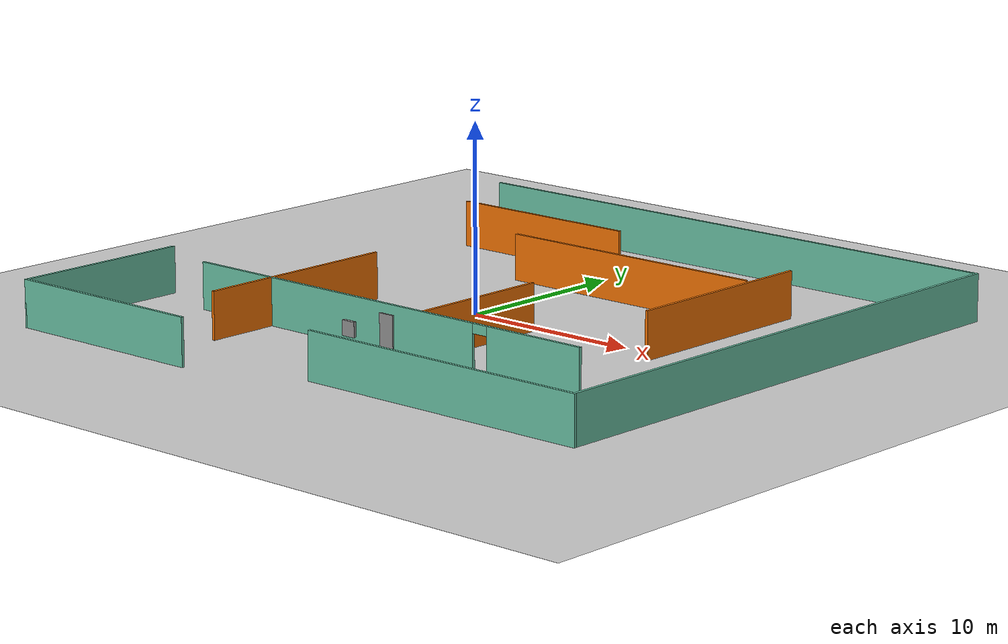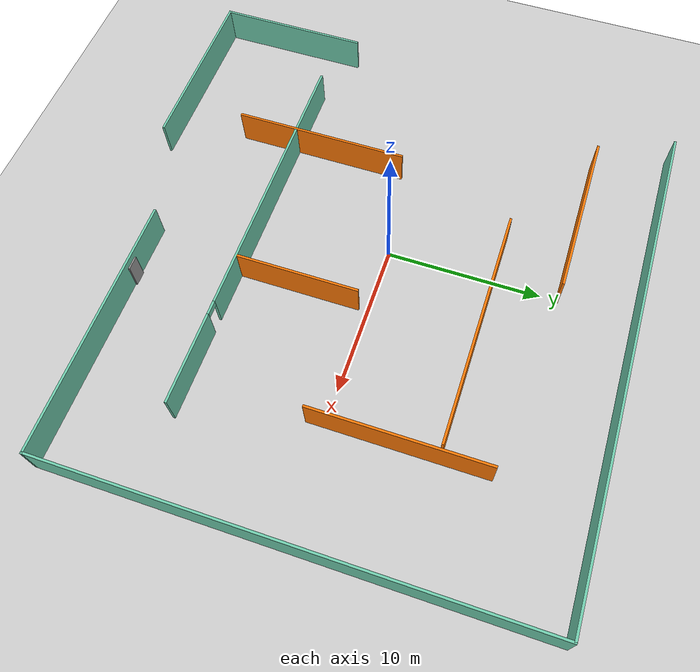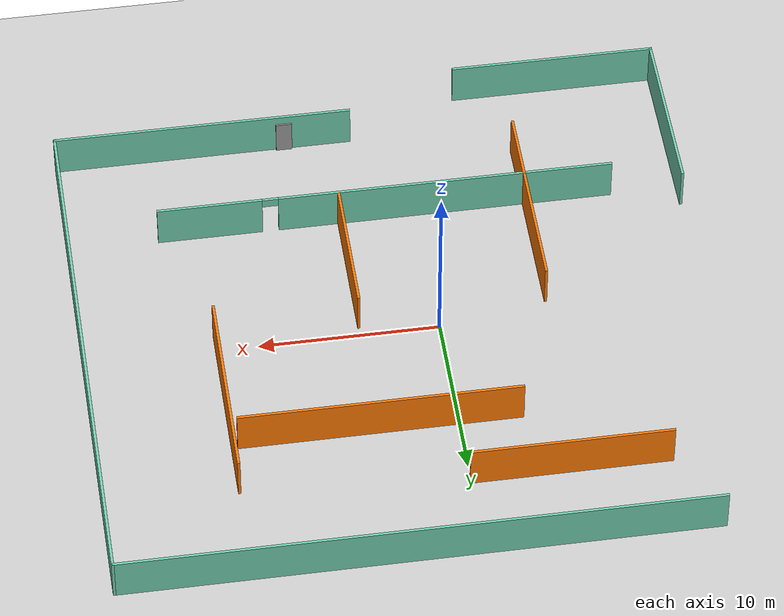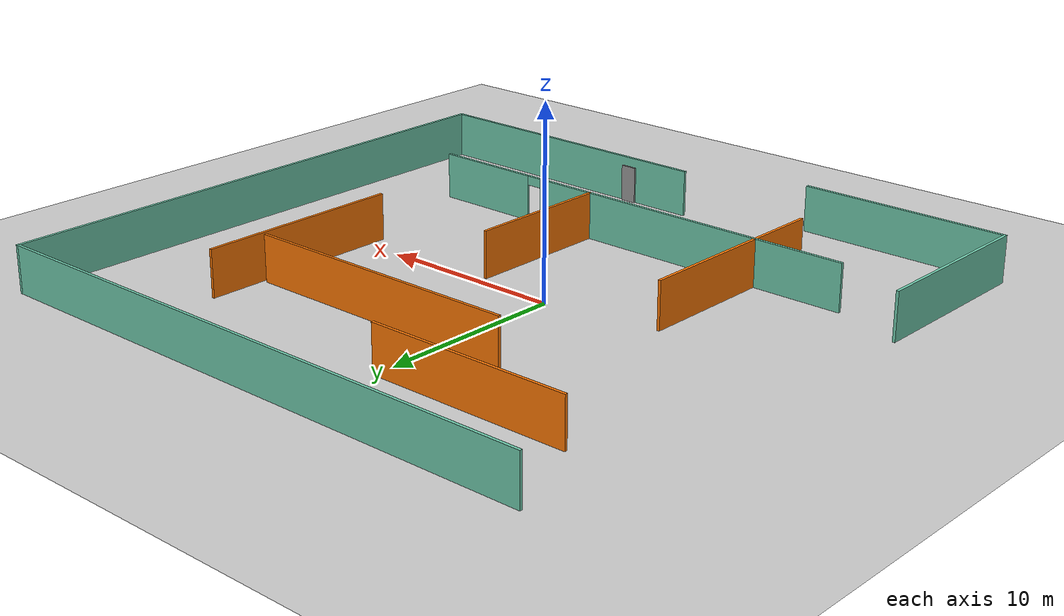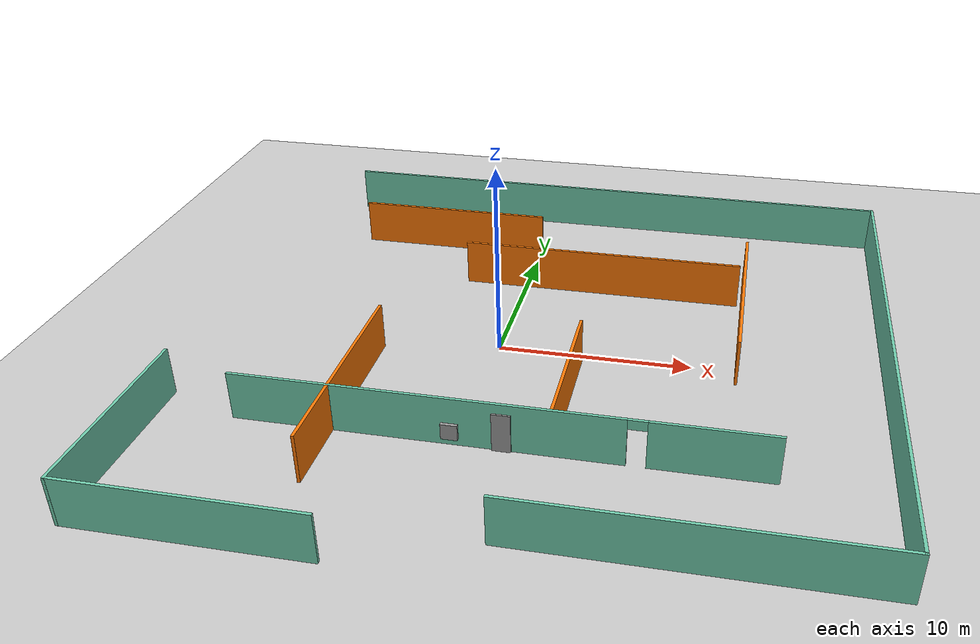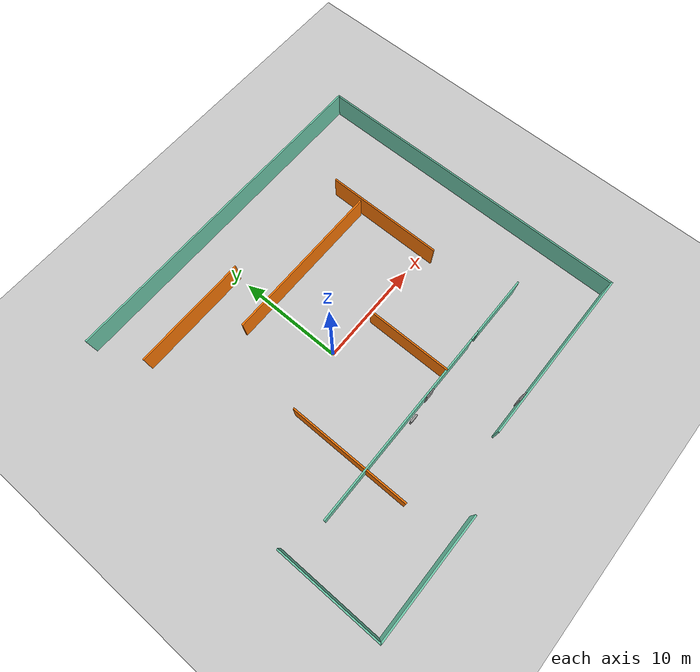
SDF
<sdf version="1.7">
 <world name="default">
  <model name="ground_plane">
   <static>1</static>
   <link name="link">
    <collision name="collision">
     <geometry><plane><normal>0 0 1</normal><size>100 100</size></plane></geometry>
     <surface><friction><ode><mu>100</mu><mu2>50</mu2></ode></friction></surface>
    </collision>
    <visual name="visual">
     <cast_shadows>0</cast_shadows>
     <geometry><plane><normal>0 0 1</normal><size>100 100</size></plane></geometry>
     <material>
      <script><uri>file://media/materials/scripts/gazebo.material</uri><name>Gazebo/Grey</name></script>
     </material>
    </visual>
   </link>
  </model>
  <model name="Untitled222">
   <pose>2.41059 -0.583412 0 0 -0 0</pose>
   <link name="Door_1">
    <collision name="Door_1_Collision">
     <geometry><box><size>0.9 0.17 2</size></box></geometry>
     <pose>0 0 1 0 -0 0</pose>
    </collision>
    <visual name="Door_1_Visual">
     <pose>0 0 1 0 -0 0</pose>
     <geometry><box><size>0.9 0.17 2</size></box></geometry>
     <material>
      <script><uri>file://media/materials/scripts/gazebo.material</uri><name>Gazebo/Grey</name></script>
     </material>
    </visual>
    <pose>4.24902 -14.0344 0 0 -0 0</pose>
   </link>
   <link name="Door_3">
    <collision name="Door_3_Collision">
     <geometry><box><size>0.9 0.17 2</size></box></geometry>
     <pose>0 0 1 0 -0 0</pose>
    </collision>
    <visual name="Door_3_Visual">
     <pose>0 0 1 0 -0 0</pose>
     <geometry><box><size>0.9 0.17 2</size></box></geometry>
     <material>
      <script><uri>file://media/materials/scripts/gazebo.material</uri><name>Gazebo/Grey</name></script>
     </material>
    </visual>
    <pose>-0.30773 -8.01293 0 0 -0 0</pose>
   </link>
   <link name="Wall_21">
    <collision name="Wall_21_Collision">
     <geometry><box><size>32.5 0.15 2.5</size></box></geometry>
     <pose>0 0 1.25 0 -0 0</pose>
    </collision>
    <visual name="Wall_21_Visual">
     <pose>0 0 1.25 0 -0 0</pose>
     <geometry><box><size>32.5 0.15 2.5</size></box></geometry>
     <material>
      <script><uri>file://media/materials/scripts/gazebo.material</uri><name>Gazebo/Grey</name></script>
      <ambient>0.435294 0.796078 0.67451 1</ambient>
     </material>
     <meta><layer>0</layer></meta>
    </visual>
    <pose>0.976447 16.4796 0 0 -0 0</pose>
   </link>
   <link name="Wall_22">
    <collision name="Wall_22_Collision">
     <geometry><box><size>30.75 0.15 2.5</size></box></geometry>
     <pose>0 0 1.25 0 -0 0</pose>
    </collision>
    <visual name="Wall_22_Visual">
     <pose>0 0 1.25 0 -0 0</pose>
     <geometry><box><size>30.75 0.15 2.5</size></box></geometry>
     <material>
      <script><uri>file://media/materials/scripts/gazebo.material</uri><name>Gazebo/Grey</name></script>
      <ambient>0.435294 0.796078 0.67451 1</ambient>
     </material>
     <meta><layer>0</layer></meta>
    </visual>
    <pose>17.1514 1.17963 0 0 -0 -1.5708</pose>
   </link>
   <link name="Wall_23">
    <collision name="Wall_23_Collision">
     <geometry><box><size>16.75 0.15 2.5</size></box></geometry>
     <pose>0 0 1.25 0 -0 0</pose>
    </collision>
    <visual name="Wall_23_Visual">
     <pose>0 0 1.25 0 -0 0</pose>
     <geometry><box><size>16.75 0.15 2.5</size></box></geometry>
     <material>
      <script><uri>file://media/materials/scripts/gazebo.material</uri><name>Gazebo/Grey</name></script>
      <ambient>0.435294 0.796078 0.67451 1</ambient>
     </material>
     <meta><layer>0</layer></meta>
    </visual>
    <pose>8.85145 -14.1204 0 0 -0 3.14159</pose>
   </link>
   <link name="Wall_25">
    <pose>-0.652029 -7.93156 0 0 -0 0</pose>
    <visual name="Wall_25_Visual_0">
     <pose>-3.37645 0 1.25 0 -0 0</pose>
     <geometry><box><size>18.7471 0.15 2.5</size></box></geometry>
     <material>
      <script><uri>file://media/materials/scripts/gazebo.material</uri><name>Gazebo/Grey</name></script>
      <ambient>0.435294 0.796078 0.67451 1</ambient>
     </material>
     <meta><layer>0</layer></meta>
    </visual>
    <collision name="Wall_25_Collision_0">
     <geometry><box><size>18.7471 0.15 2.5</size></box></geometry>
     <pose>-3.37645 0 1.25 0 -0 0</pose>
    </collision>
    <visual name="Wall_25_Visual_1">
     <pose>9.82355 0 1.25 0 -0 0</pose>
     <geometry><box><size>5.8529 0.15 2.5</size></box></geometry>
     <material>
      <script><uri>file://media/materials/scripts/gazebo.material</uri><name>Gazebo/Grey</name></script>
      <ambient>0.435294 0.796078 0.67451 1</ambient>
     </material>
     <meta><layer>0</layer></meta>
    </visual>
    <collision name="Wall_25_Collision_1">
     <geometry><box><size>5.8529 0.15 2.5</size></box></geometry>
     <pose>9.82355 0 1.25 0 -0 0</pose>
    </collision>
    <visual name="Wall_25_Visual_2">
     <pose>6.4471 0 2.25 0 -0 0</pose>
     <geometry><box><size>0.9 0.15 0.5</size></box></geometry>
     <material>
      <script><uri>file://media/materials/scripts/gazebo.material</uri><name>Gazebo/Grey</name></script>
      <ambient>0.435294 0.796078 0.67451 1</ambient>
     </material>
     <meta><layer>0</layer></meta>
    </visual>
    <collision name="Wall_25_Collision_2">
     <geometry><box><size>0.9 0.15 0.5</size></box></geometry>
     <pose>6.4471 0 2.25 0 -0 0</pose>
    </collision>
   </link>
   <link name="Wall_27">
    <collision name="Wall_27_Collision">
     <geometry><box><size>8 0.15 2.5</size></box></geometry>
     <pose>0 0 1.25 0 -0 0</pose>
    </collision>
    <visual name="Wall_27_Visual">
     <pose>0 0 1.25 0 -0 0</pose>
     <geometry><box><size>8 0.15 2.5</size></box></geometry>
     <material>
      <script><uri>file://media/materials/scripts/gazebo.material</uri><name>Gazebo/Grey</name></script>
      <ambient>0.996078 0.47451 0.0196078 1</ambient>
     </material>
     <meta><layer>0</layer></meta>
    </visual>
    <pose>1.97065 -3.96361 0 0 -0 -1.5708</pose>
   </link>
   <link name="Wall_29">
    <collision name="Wall_29_Collision">
     <geometry><box><size>11.5 0.15 2.5</size></box></geometry>
     <pose>0 0 1.25 0 -0 0</pose>
    </collision>
    <visual name="Wall_29_Visual">
     <pose>0 0 1.25 0 -0 0</pose>
     <geometry><box><size>11.5 0.15 2.5</size></box></geometry>
     <material>
      <script><uri>file://media/materials/scripts/gazebo.material</uri><name>Gazebo/Grey</name></script>
      <ambient>0.996078 0.47451 0.0196078 1</ambient>
     </material>
     <meta><layer>0</layer></meta>
    </visual>
    <pose>-8.44479 -6.20183 0 0 -0 -1.5708</pose>
   </link>
   <link name="Wall_31">
    <collision name="Wall_31_Collision">
     <geometry><box><size>10 0.15 2.5</size></box></geometry>
     <pose>0 0 1.25 0 -0 0</pose>
    </collision>
    <visual name="Wall_31_Visual">
     <pose>0 0 1.25 0 -0 0</pose>
     <geometry><box><size>10 0.15 2.5</size></box></geometry>
     <material>
      <script><uri>file://media/materials/scripts/gazebo.material</uri><name>Gazebo/Grey</name></script>
      <ambient>0.435294 0.796078 0.67451 1</ambient>
     </material>
     <meta><layer>0</layer></meta>
    </visual>
    <pose>-17.1514 -11.5546 0 0 -0 -1.5708</pose>
   </link>
   <link name="Wall_32">
    <collision name="Wall_32_Collision">
     <geometry><box><size>11.5 0.15 2.5</size></box></geometry>
     <pose>0 0 1.25 0 -0 0</pose>
    </collision>
    <visual name="Wall_32_Visual">
     <pose>0 0 1.25 0 -0 0</pose>
     <geometry><box><size>11.5 0.15 2.5</size></box></geometry>
     <material>
      <script><uri>file://media/materials/scripts/gazebo.material</uri><name>Gazebo/Grey</name></script>
      <ambient>0.435294 0.796078 0.67451 1</ambient>
     </material>
     <meta><layer>0</layer></meta>
    </visual>
    <pose>-11.4764 -16.4796 0 0 -0 0</pose>
   </link>
   <link name="Wall_34">
    <collision name="Wall_34_Collision">
     <geometry><box><size>11 0.15 2.5</size></box></geometry>
     <pose>0 0 1.25 0 -0 0</pose>
    </collision>
    <visual name="Wall_34_Visual">
     <pose>0 0 1.25 0 -0 0</pose>
     <geometry><box><size>11 0.15 2.5</size></box></geometry>
     <material>
      <script><uri>file://media/materials/scripts/gazebo.material</uri><name>Gazebo/Grey</name></script>
      <ambient>0.996078 0.47451 0.0196078 1</ambient>
     </material>
     <meta><layer>0</layer></meta>
    </visual>
    <pose>-7.82066 11.6788 0 0 -0 0</pose>
   </link>
   <link name="Wall_36">
    <collision name="Wall_36_Collision">
     <geometry><box><size>15.5 0.15 2.5</size></box></geometry>
     <pose>0 0 1.25 0 -0 0</pose>
    </collision>
    <visual name="Wall_36_Visual">
     <pose>0 0 1.25 0 -0 0</pose>
     <geometry><box><size>15.5 0.15 2.5</size></box></geometry>
     <material>
      <script><uri>file://media/materials/scripts/gazebo.material</uri><name>Gazebo/Grey</name></script>
      <ambient>0.996078 0.47451 0.0196078 1</ambient>
     </material>
     <meta><layer>0</layer></meta>
    </visual>
    <pose>1.83407 7.52886 0 0 -0 0</pose>
   </link>
   <link name="Wall_38">
    <collision name="Wall_38_Collision">
     <geometry><box><size>11.25 0.15 2.5</size></box></geometry>
     <pose>0 0 1.25 0 -0 0</pose>
    </collision>
    <visual name="Wall_38_Visual">
     <pose>0 0 1.25 0 -0 0</pose>
     <geometry><box><size>11.25 0.15 2.5</size></box></geometry>
     <material>
      <script><uri>file://media/materials/scripts/gazebo.material</uri><name>Gazebo/Grey</name></script>
      <ambient>0.996078 0.47451 0.0196078 1</ambient>
     </material>
     <meta><layer>0</layer></meta>
    </visual>
    <pose>9.8636 5.07094 0 0 -0 -1.5708</pose>
   </link>
   <link name="Window_2">
    <collision name="Window_2_Collision">
     <geometry><box><size>0.8 0.17 0.8</size></box></geometry>
     <pose>0 0 0.4 0 -0 0</pose>
    </collision>
    <visual name="Window_2_Visual">
     <pose>0 0 0.4 0 -0 0</pose>
     <geometry><box><size>0.8 0.17 0.8</size></box></geometry>
     <material>
      <script><uri>file://media/materials/scripts/gazebo.material</uri><name>Gazebo/Grey</name></script>
     </material>
    </visual>
    <pose>-2.66748 -8.25704 0.5 0 -0 0</pose>
   </link>
   <static>1</static>
  </model>
 </world>
</sdf>
